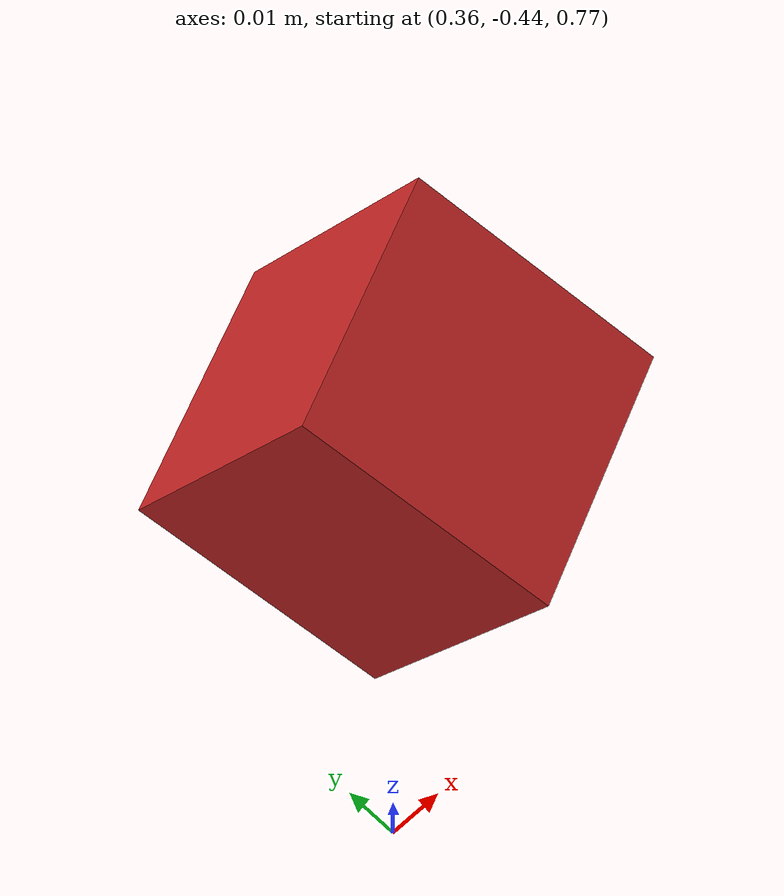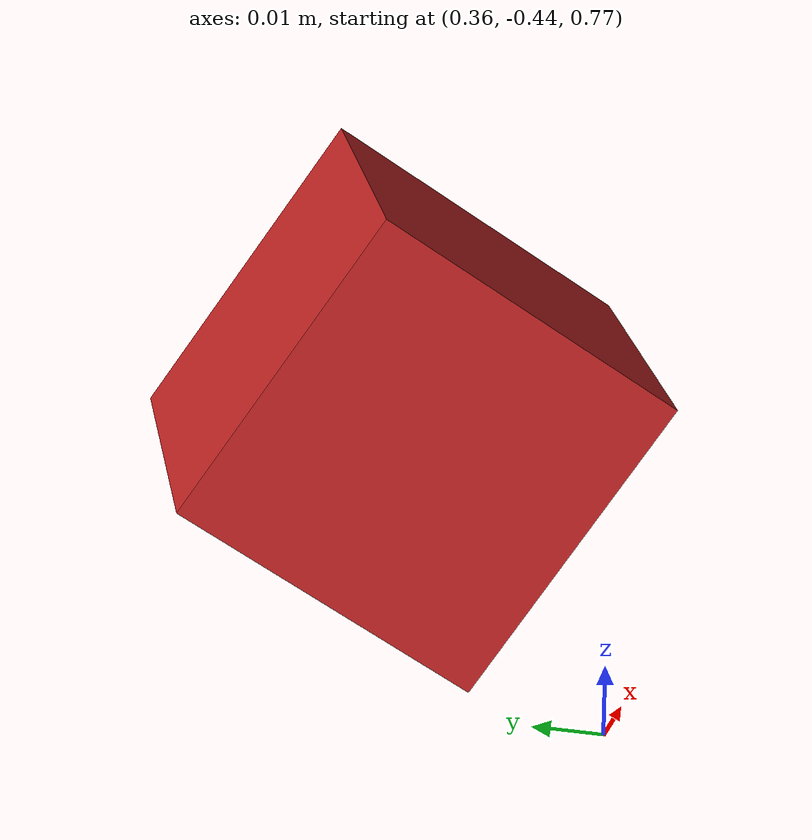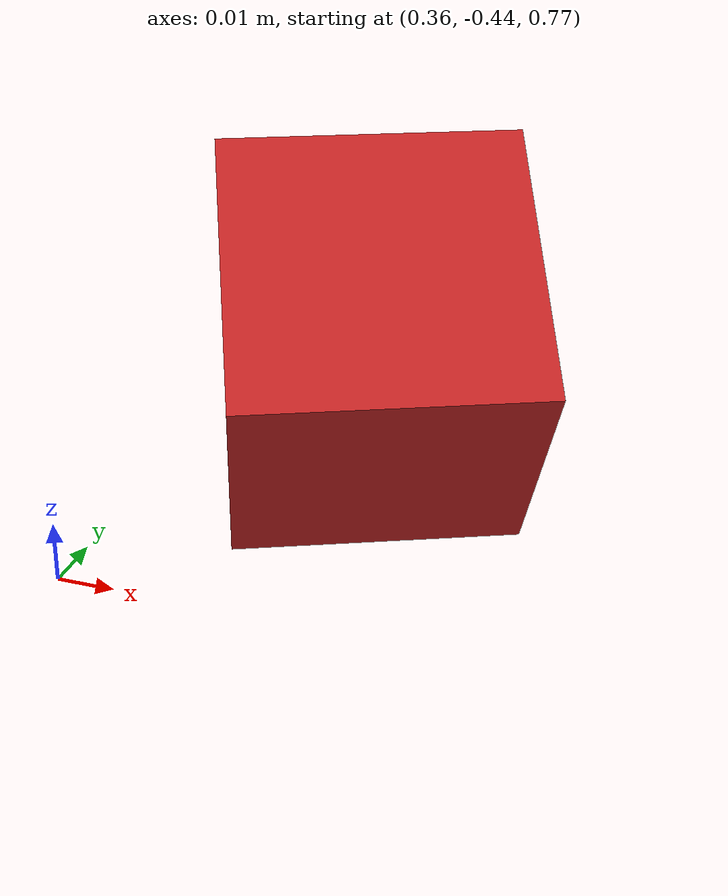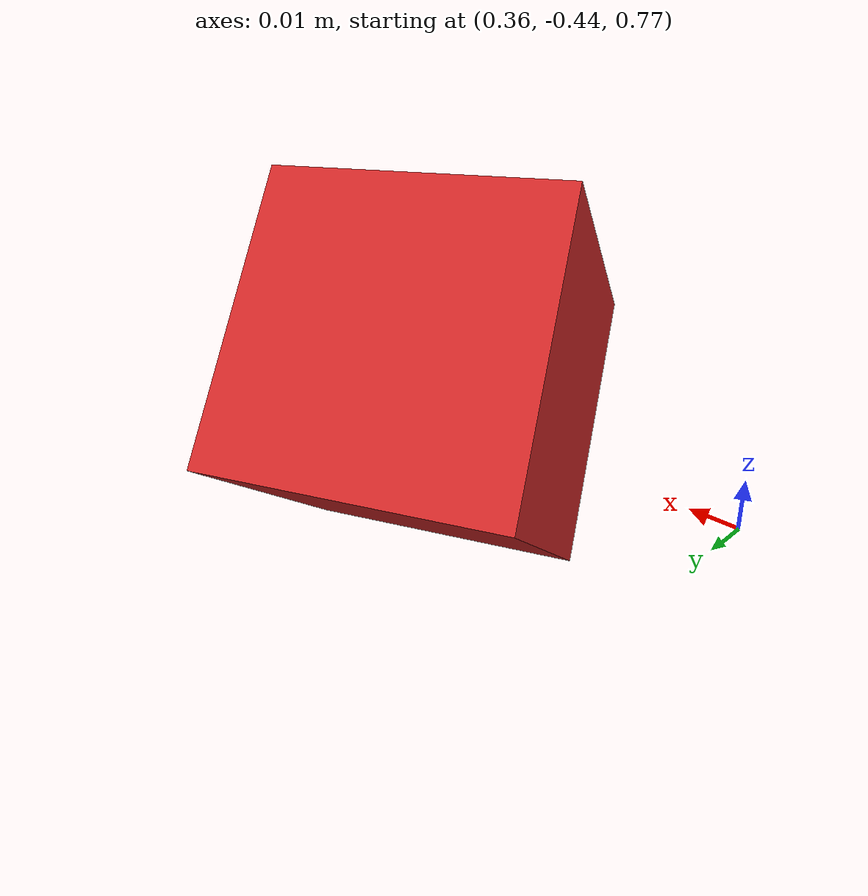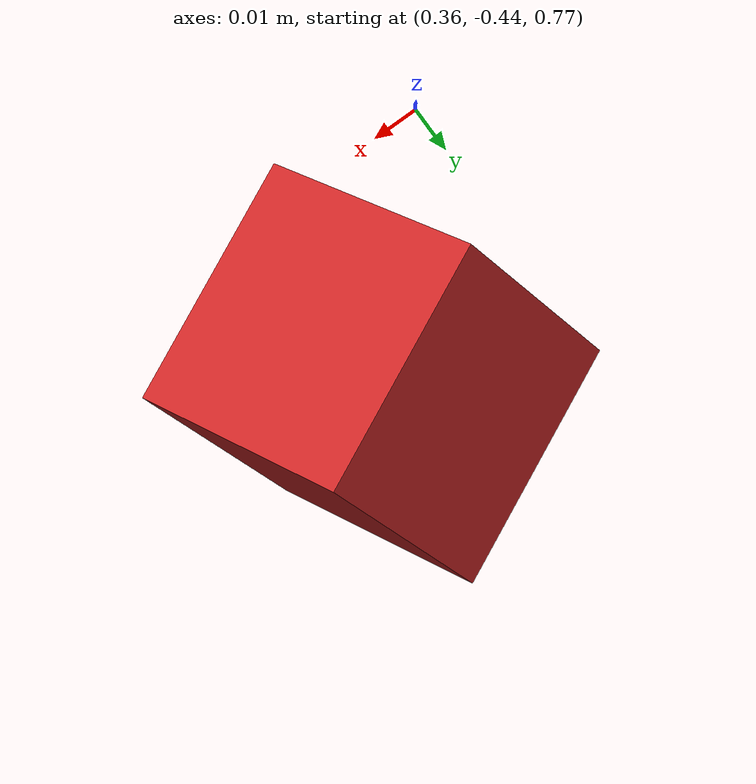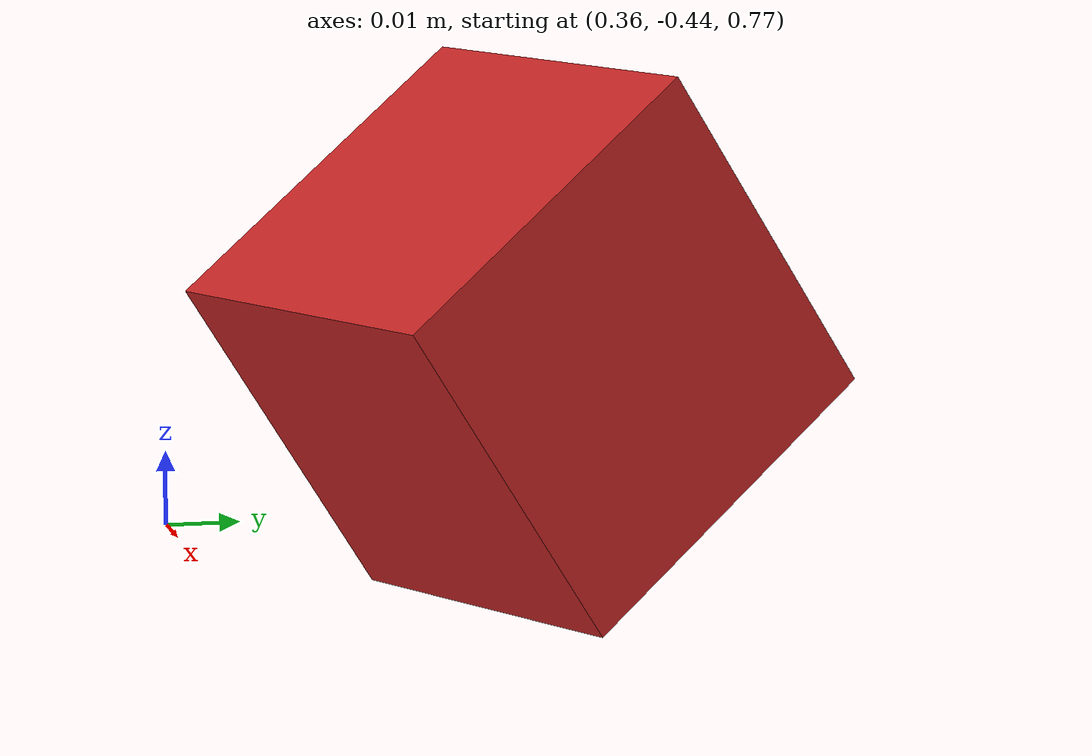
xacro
<?xml version="1.0"?>
<robot xmlns:xacro="http://www.ros.org/wiki/xacro" name="robot_description">
<xacro:property name="camera_link" value="0.05" /> <!-- Size of square 'camera' box -->

<link name="world">
  </link>

<joint name="camera_joint" type="fixed">
    <origin xyz="0.4 -0.4 0.8" rpy="0 0.95 2"/>
    <parent link="world"/>
    <child link="camera_link"/>
  </joint>

  <!-- Camera -->
  <link name="camera_link">
    <collision>
      <origin xyz="0 0 0" rpy="0 0 0"/>
      <geometry>
    <box size="${camera_link} ${camera_link} ${camera_link}"/>
      </geometry>
    </collision>

    <visual>
      <origin xyz="0 0 0" rpy="0 0 0"/>
      <geometry>
    <box size="${camera_link} ${camera_link} ${camera_link}"/>
      </geometry>
      <material name="red"/>
    </visual>

    <inertial>
      <mass value="1e-5" />
      <origin xyz="0 0 0" rpy="0 0 0"/>
      <inertia ixx="1e-6" ixy="0" ixz="0" iyy="1e-6" iyz="0" izz="1e-6" />
    </inertial>
  </link>

    <gazebo reference="camera_link">
    <sensor type="camera" name="camera1">
      <update_rate>30.0</update_rate>
      <camera name="head">
        <horizontal_fov>1.3962634</horizontal_fov>
        <image>
          <width>1300</width>
          <height>720</height>
          <format>R8G8B8</format>
        </image>
        <clip>
          <near>0.02</near>
          <far>300</far>
        </clip>
        <noise>
          <type>gaussian</type>
          <!-- Noise is sampled independently per pixel on each frame.
               That pixel's noise value is added to each of its color
               channels, which at that point lie in the range [0,1]. -->
          <mean>0.0</mean>
          <stddev>0.007</stddev>
        </noise>
      </camera>
      <plugin name="camera_controller" filename="libgazebo_ros_camera.so">
        <alwaysOn>true</alwaysOn>
        <updateRate>0.0</updateRate>
        <cameraName>rrbot/camera1</cameraName>
        <imageTopicName>image_raw</imageTopicName>
        <cameraInfoTopicName>camera_info</cameraInfoTopicName>
        <frameName>camera_link</frameName>
        <hackBaseline>0.07</hackBaseline>
        <distortionK1>0.0</distortionK1>
        <distortionK2>0.0</distortionK2>
        <distortionK3>0.0</distortionK3>
        <distortionT1>0.0</distortionT1>
        <distortionT2>0.0</distortionT2>
      </plugin>
    </sensor>
  </gazebo>

</robot>
